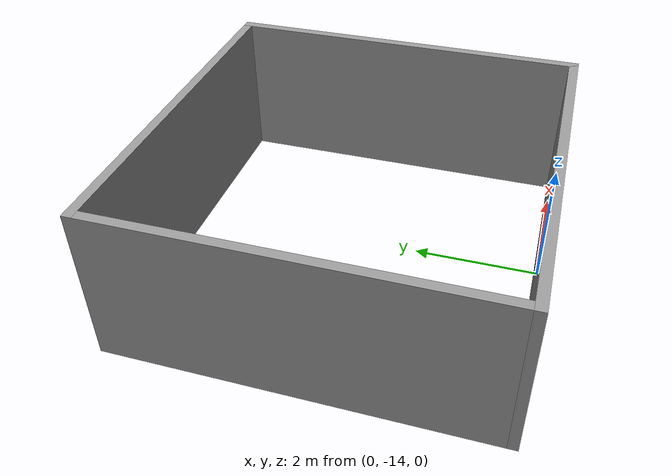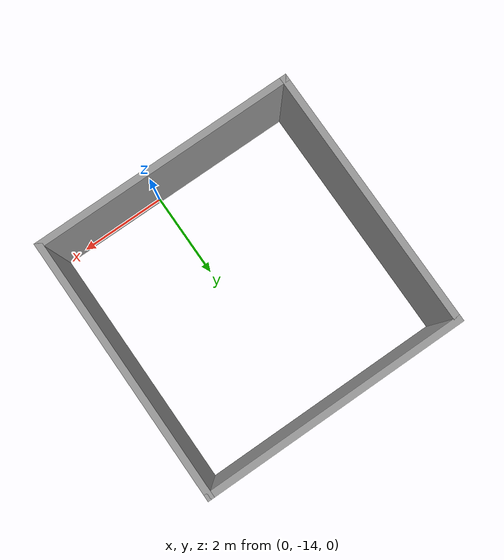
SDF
<?xml version='1.0'?>
<sdf version='1.7'>
  <model name='Untitled'>
    <pose>-0.402231 -7.04892 0 0 -0 0</pose>
    <link name='Wall_19'>
      <collision name='Wall_19_Collision'>
        <geometry>
          <box>
            <size>6 0.15 2.5</size>
          </box>
        </geometry>
        <pose>0 0 1.25 0 -0 0</pose>
      </collision>
      <visual name='Wall_19_Visual'>
        <pose>0 0 1.25 0 -0 0</pose>
        <geometry>
          <box>
            <size>6 0.15 2.5</size>
          </box>
        </geometry>
        <material>
          <script>
            <uri>file://media/materials/scripts/gazebo.material</uri>
            <name>Gazebo/Grey</name>
          </script>
          <ambient>1 1 1 1</ambient>
        </material>
        <meta>
          <layer>0</layer>
        </meta>
      </visual>
      <pose>-0 -1.12392 0 0 -0 0</pose>
    </link>
    <link name='Wall_20'>
      <collision name='Wall_20_Collision'>
        <geometry>
          <box>
            <size>6 0.15 2.5</size>
          </box>
        </geometry>
        <pose>0 0 1.25 0 -0 0</pose>
      </collision>
      <visual name='Wall_20_Visual'>
        <pose>0 0 1.25 0 -0 0</pose>
        <geometry>
          <box>
            <size>6 0.15 2.5</size>
          </box>
        </geometry>
        <material>
          <script>
            <uri>file://media/materials/scripts/gazebo.material</uri>
            <name>Gazebo/Grey</name>
          </script>
          <ambient>1 1 1 1</ambient>
        </material>
        <meta>
          <layer>0</layer>
        </meta>
      </visual>
      <pose>2.925 -4.04892 0 0 -0 -1.5708</pose>
    </link>
    <link name='Wall_21'>
      <collision name='Wall_21_Collision'>
        <geometry>
          <box>
            <size>6 0.15 2.5</size>
          </box>
        </geometry>
        <pose>0 0 1.25 0 -0 0</pose>
      </collision>
      <visual name='Wall_21_Visual'>
        <pose>0 0 1.25 0 -0 0</pose>
        <geometry>
          <box>
            <size>6 0.15 2.5</size>
          </box>
        </geometry>
        <material>
          <script>
            <uri>file://media/materials/scripts/gazebo.material</uri>
            <name>Gazebo/Grey</name>
          </script>
          <ambient>1 1 1 1</ambient>
        </material>
        <meta>
          <layer>0</layer>
        </meta>
      </visual>
      <pose>-0 -6.97392 0 0 -0 3.14159</pose>
    </link>
    <link name='Wall_22'>
      <collision name='Wall_22_Collision'>
        <geometry>
          <box>
            <size>6 0.15 2.5</size>
          </box>
        </geometry>
        <pose>0 0 1.25 0 -0 0</pose>
      </collision>
      <visual name='Wall_22_Visual'>
        <pose>0 0 1.25 0 -0 0</pose>
        <geometry>
          <box>
            <size>6 0.15 2.5</size>
          </box>
        </geometry>
        <material>
          <script>
            <uri>file://media/materials/scripts/gazebo.material</uri>
            <name>Gazebo/Grey</name>
          </script>
          <ambient>1 1 1 1</ambient>
        </material>
        <meta>
          <layer>0</layer>
        </meta>
      </visual>
      <pose>-2.925 -4.04892 0 0 -0 1.5708</pose>
    </link>
    <static>1</static>
  </model>
</sdf>
